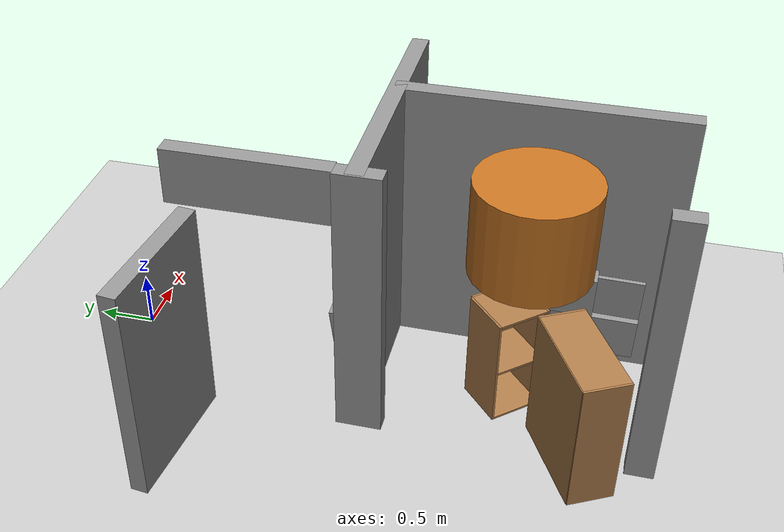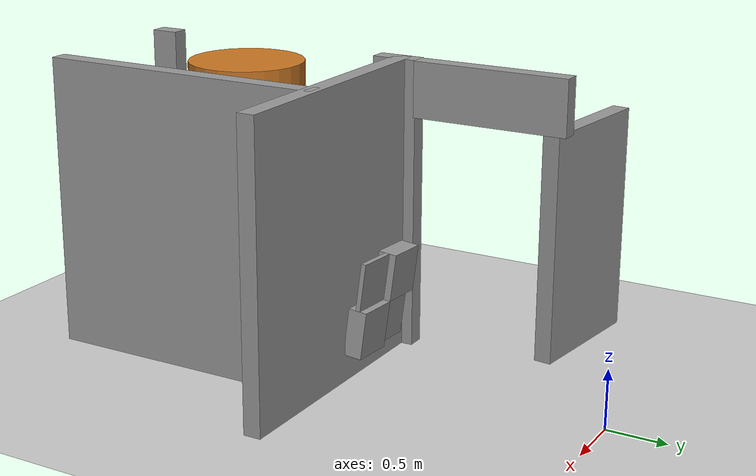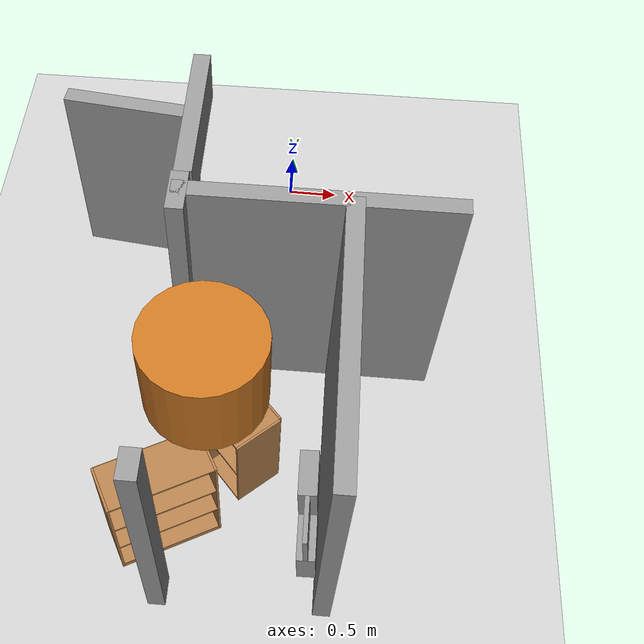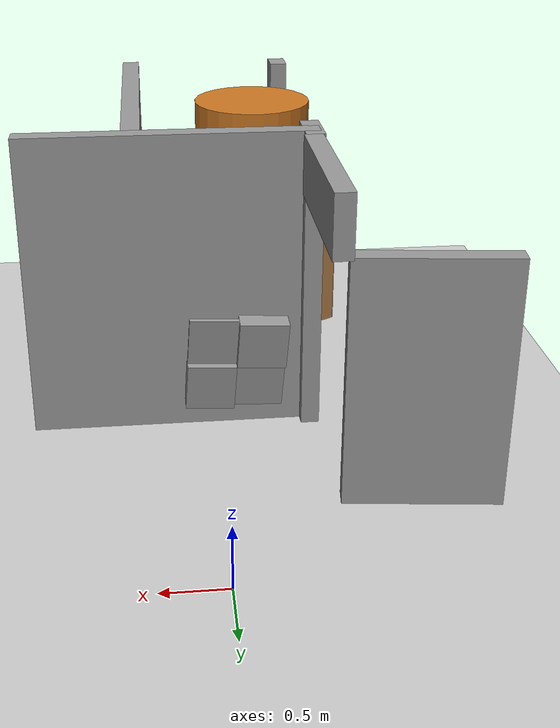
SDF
<sdf version="1.7">
 <world name="default">
  <model name="demo_clean">
   <static>1</static>
   <link name="Wall_19">
    <collision name="Wall_19_Collision">
     <geometry><box><size>2.34163 0.15 2.5</size></box></geometry>
     <pose>0 0 1.25 0 -0 0</pose>
     <surface>
      <friction>
       <ode><mu>1</mu><mu2>1</mu2><fdir1>0 0 0</fdir1><slip1>0</slip1><slip2>0</slip2></ode>
       <torsional>
        <coefficient>1</coefficient>
        <patch_radius>0</patch_radius>
        <surface_radius>0</surface_radius>
        <use_patch_radius>1</use_patch_radius>
        <ode><slip>0</slip></ode>
       </torsional>
      </friction>
      <bounce><restitution_coefficient>0</restitution_coefficient><threshold>1e+06</threshold></bounce>
      <contact>
       <collide_without_contact>0</collide_without_contact>
       <collide_without_contact_bitmask>1</collide_without_contact_bitmask>
       <collide_bitmask>1</collide_bitmask>
       <ode>
        <soft_cfm>0</soft_cfm>
        <soft_erp>0.2</soft_erp>
        <kp>1e+13</kp>
        <kd>1</kd>
        <max_vel>0.01</max_vel>
        <min_depth>0</min_depth>
       </ode>
       <bullet>
        <split_impulse>1</split_impulse>
        <split_impulse_penetration_threshold>-0.01</split_impulse_penetration_threshold>
        <soft_cfm>0</soft_cfm>
        <soft_erp>0.2</soft_erp>
        <kp>1e+13</kp>
        <kd>1</kd>
       </bullet>
      </contact>
     </surface>
    </collision>
    <visual name="Wall_19_Visual">
     <geometry><box><size>2.34163 0.15 2.5</size></box></geometry>
     <material>
      <script><name>Gazebo/Grey</name><uri>file://media/materials/scripts/gazebo.material</uri></script>
      <ambient>1 1 1 1</ambient>
      <shader type="pixel"><normal_map>default</normal_map></shader>
     </material>
     <pose>0 0 1.25 0 -0 0</pose>
    </visual>
    <inertial>
     <inertia><ixx>0</ixx><iyy>0</iyy><izz>0</izz><ixy>0</ixy><ixz>0</ixz><iyz>0</iyz></inertia>
     <mass>1</mass>
    </inertial>
    <pose>0.295923 -2.24288 0 0 -0 0</pose>
   </link>
   <link name="Wall_21">
    <collision name="Wall_21_Collision">
     <geometry><box><size>2.5 0.15 2.5</size></box></geometry>
     <pose>0 0 1.25 0 -0 0</pose>
     <surface>
      <friction>
       <ode><mu>1</mu><mu2>1</mu2><fdir1>0 0 0</fdir1><slip1>0</slip1><slip2>0</slip2></ode>
       <torsional>
        <coefficient>1</coefficient>
        <patch_radius>0</patch_radius>
        <surface_radius>0</surface_radius>
        <use_patch_radius>1</use_patch_radius>
        <ode><slip>0</slip></ode>
       </torsional>
      </friction>
      <bounce><restitution_coefficient>0</restitution_coefficient><threshold>1e+06</threshold></bounce>
      <contact>
       <collide_without_contact>0</collide_without_contact>
       <collide_without_contact_bitmask>1</collide_without_contact_bitmask>
       <collide_bitmask>1</collide_bitmask>
       <ode>
        <soft_cfm>0</soft_cfm>
        <soft_erp>0.2</soft_erp>
        <kp>1e+13</kp>
        <kd>1</kd>
        <max_vel>0.01</max_vel>
        <min_depth>0</min_depth>
       </ode>
       <bullet>
        <split_impulse>1</split_impulse>
        <split_impulse_penetration_threshold>-0.01</split_impulse_penetration_threshold>
        <soft_cfm>0</soft_cfm>
        <soft_erp>0.2</soft_erp>
        <kp>1e+13</kp>
        <kd>1</kd>
       </bullet>
      </contact>
     </surface>
    </collision>
    <visual name="Wall_21_Visual">
     <geometry><box><size>2.5 0.15 2.5</size></box></geometry>
     <material>
      <script><name>Gazebo/Grey</name><uri>file://media/materials/scripts/gazebo.material</uri></script>
      <ambient>1 1 1 1</ambient>
      <shader type="pixel"><normal_map>default</normal_map></shader>
     </material>
     <pose>0 0 1.25 0 -0 0</pose>
    </visual>
    <pose>0.573753 -3.46553 0 0 0 -1.5708</pose>
   </link>
   <link name="Wall_21_clone_0">
    <collision name="Wall_21_Collision">
     <geometry><box><size>0.394105 0.15 2.5</size></box></geometry>
     <pose>0 0 1.25 0 -0 0</pose>
     <surface>
      <friction>
       <ode><mu>1</mu><mu2>1</mu2><fdir1>0 0 0</fdir1><slip1>0</slip1><slip2>0</slip2></ode>
       <torsional>
        <coefficient>1</coefficient>
        <patch_radius>0</patch_radius>
        <surface_radius>0</surface_radius>
        <use_patch_radius>1</use_patch_radius>
        <ode><slip>0</slip></ode>
       </torsional>
      </friction>
      <bounce><restitution_coefficient>0</restitution_coefficient><threshold>1e+06</threshold></bounce>
      <contact>
       <collide_without_contact>0</collide_without_contact>
       <collide_without_contact_bitmask>1</collide_without_contact_bitmask>
       <collide_bitmask>1</collide_bitmask>
       <ode>
        <soft_cfm>0</soft_cfm>
        <soft_erp>0.2</soft_erp>
        <kp>1e+13</kp>
        <kd>1</kd>
        <max_vel>0.01</max_vel>
        <min_depth>0</min_depth>
       </ode>
       <bullet>
        <split_impulse>1</split_impulse>
        <split_impulse_penetration_threshold>-0.01</split_impulse_penetration_threshold>
        <soft_cfm>0</soft_cfm>
        <soft_erp>0.2</soft_erp>
        <kp>1e+13</kp>
        <kd>1</kd>
       </bullet>
      </contact>
     </surface>
    </collision>
    <visual name="Wall_21_Visual">
     <geometry><box><size>0.394105 0.15 2.5</size></box></geometry>
     <material>
      <script><name>Gazebo/Grey</name><uri>file://media/materials/scripts/gazebo.material</uri></script>
      <ambient>1 1 1 1</ambient>
      <shader type="pixel"><normal_map>default</normal_map></shader>
     </material>
     <pose>0 0 1.25 0 -0 0</pose>
    </visual>
    <inertial>
     <inertia><ixx>0</ixx><iyy>0</iyy><izz>0</izz><ixy>0</ixy><ixz>0</ixz><iyz>0</iyz></inertia>
     <mass>1</mass>
    </inertial>
    <pose>-0.820336 -2.26773 0 0 0 -1.5708</pose>
   </link>
   <link name="Wall_21_clone_0_clone_0_clone_clone">
    <gravity>0</gravity>
    <collision name="Wall_21_Collision">
     <geometry><box><size>1.1941 0.15 1.96033</size></box></geometry>
     <pose>0 0 1.25 0 -0 0</pose>
     <surface>
      <friction>
       <ode><mu>1</mu><mu2>1</mu2><fdir1>0 0 0</fdir1><slip1>0</slip1><slip2>0</slip2></ode>
       <torsional>
        <coefficient>1</coefficient>
        <patch_radius>0</patch_radius>
        <surface_radius>0</surface_radius>
        <use_patch_radius>1</use_patch_radius>
        <ode><slip>0</slip></ode>
       </torsional>
      </friction>
      <bounce><restitution_coefficient>0</restitution_coefficient><threshold>1e+06</threshold></bounce>
      <contact>
       <collide_without_contact>0</collide_without_contact>
       <collide_without_contact_bitmask>1</collide_without_contact_bitmask>
       <collide_bitmask>1</collide_bitmask>
       <ode>
        <soft_cfm>0</soft_cfm>
        <soft_erp>0.2</soft_erp>
        <kp>1e+13</kp>
        <kd>1</kd>
        <max_vel>0.01</max_vel>
        <min_depth>0</min_depth>
       </ode>
       <bullet>
        <split_impulse>1</split_impulse>
        <split_impulse_penetration_threshold>-0.01</split_impulse_penetration_threshold>
        <soft_cfm>0</soft_cfm>
        <soft_erp>0.2</soft_erp>
        <kp>1e+13</kp>
        <kd>1</kd>
       </bullet>
      </contact>
     </surface>
    </collision>
    <visual name="Wall_21_Visual">
     <geometry><box><size>1.1941 0.15 1.96033</size></box></geometry>
     <material>
      <script><name>Gazebo/Grey</name><uri>file://media/materials/scripts/gazebo.material</uri></script>
      <ambient>1 1 1 1</ambient>
      <shader type="pixel"><normal_map>__default__</normal_map></shader>
      <diffuse>0.7 0.7 0.7 1</diffuse>
      <specular>0.01 0.01 0.01 1</specular>
      <emissive>0 0 0 1</emissive>
     </material>
     <pose>0 0 1.25 0 -0 0</pose>
    </visual>
    <inertial>
     <inertia><ixx>0</ixx><iyy>0</iyy><izz>0</izz><ixy>0</ixy><ixz>0</ixz><iyz>0</iyz></inertia>
     <mass>1</mass>
    </inertial>
    <pose>-1.47342 -0.839052 -0.23202 0 -0 3.0297</pose>
   </link>
   <link name="Wall_21_clone_clone">
    <collision name="Wall_21_Collision">
     <geometry><box><size>0.240964 0.15 2.5</size></box></geometry>
     <pose>0 0 1.25 0 -0 0</pose>
     <surface>
      <friction>
       <ode><mu>1</mu><mu2>1</mu2><fdir1>0 0 0</fdir1><slip1>0</slip1><slip2>0</slip2></ode>
       <torsional>
        <coefficient>1</coefficient>
        <patch_radius>0</patch_radius>
        <surface_radius>0</surface_radius>
        <use_patch_radius>1</use_patch_radius>
        <ode><slip>0</slip></ode>
       </torsional>
      </friction>
      <bounce><restitution_coefficient>0</restitution_coefficient><threshold>1e+06</threshold></bounce>
      <contact>
       <collide_without_contact>0</collide_without_contact>
       <collide_without_contact_bitmask>1</collide_without_contact_bitmask>
       <collide_bitmask>1</collide_bitmask>
       <ode>
        <soft_cfm>0</soft_cfm>
        <soft_erp>0.2</soft_erp>
        <kp>1e+13</kp>
        <kd>1</kd>
        <max_vel>0.01</max_vel>
        <min_depth>0</min_depth>
       </ode>
       <bullet>
        <split_impulse>1</split_impulse>
        <split_impulse_penetration_threshold>-0.01</split_impulse_penetration_threshold>
        <soft_cfm>0</soft_cfm>
        <soft_erp>0.2</soft_erp>
        <kp>1e+13</kp>
        <kd>1</kd>
       </bullet>
      </contact>
     </surface>
    </collision>
    <visual name="Wall_21_Visual">
     <geometry><box><size>0.240964 0.15 2.5</size></box></geometry>
     <material>
      <script><name>Gazebo/Grey</name><uri>file://media/materials/scripts/gazebo.material</uri></script>
      <ambient>1 1 1 1</ambient>
      <shader type="pixel"><normal_map>default</normal_map></shader>
     </material>
     <pose>0 0 1.25 0 -0 0</pose>
    </visual>
    <inertial>
     <inertia><ixx>0</ixx><iyy>0</iyy><izz>0</izz><ixy>0</ixy><ixz>0</ixz><iyz>0</iyz></inertia>
     <mass>1</mass>
    </inertial>
    <pose>-0.824993 -4.62184 0 0 0 -1.5708</pose>
   </link>
   <link name="Wall_28_clone_clone_clone">
    <gravity>0</gravity>
    <collision name="Wall_28_Collision">
     <geometry><box><size>1.35894 0.15 0.476648</size></box></geometry>
     <pose>0 0 1.25 0 -0 0</pose>
     <surface>
      <friction>
       <ode><mu>1</mu><mu2>1</mu2><fdir1>0 0 0</fdir1><slip1>0</slip1><slip2>0</slip2></ode>
       <torsional>
        <coefficient>1</coefficient>
        <patch_radius>0</patch_radius>
        <surface_radius>0</surface_radius>
        <use_patch_radius>1</use_patch_radius>
        <ode><slip>0</slip></ode>
       </torsional>
      </friction>
      <bounce><restitution_coefficient>0</restitution_coefficient><threshold>1e+06</threshold></bounce>
      <contact>
       <collide_without_contact>0</collide_without_contact>
       <collide_without_contact_bitmask>1</collide_without_contact_bitmask>
       <collide_bitmask>1</collide_bitmask>
       <ode>
        <soft_cfm>0</soft_cfm>
        <soft_erp>0.2</soft_erp>
        <kp>1e+13</kp>
        <kd>1</kd>
        <max_vel>0.01</max_vel>
        <min_depth>0</min_depth>
       </ode>
       <bullet>
        <split_impulse>1</split_impulse>
        <split_impulse_penetration_threshold>-0.01</split_impulse_penetration_threshold>
        <soft_cfm>0</soft_cfm>
        <soft_erp>0.2</soft_erp>
        <kp>1e+13</kp>
        <kd>1</kd>
       </bullet>
      </contact>
     </surface>
    </collision>
    <visual name="Wall_28_Visual">
     <geometry><box><size>1.35894 0.15 0.476648</size></box></geometry>
     <material>
      <script><name>Gazebo/Grey</name><uri>file://media/materials/scripts/gazebo.material</uri></script>
      <ambient>1 1 1 1</ambient>
      <shader type="pixel"><normal_map>__default__</normal_map></shader>
     </material>
     <pose>0 0 1.25 0 -0 0</pose>
    </visual>
    <inertial>
     <inertia><ixx>0</ixx><iyy>0</iyy><izz>0</izz><ixy>0</ixy><ixz>0</ixz><iyz>0</iyz></inertia>
     <mass>1</mass>
    </inertial>
    <pose>-0.802228 -1.39589 1.01168 0 0 -1.57004</pose>
   </link>
  </model>
  <model name="static_cylinder">
   <pose>-0.476185 -3.54773 2 0 -0 0.36809</pose>
   <static>1</static>
   <allow_auto_disable>0</allow_auto_disable>
   <link name="link">
    <collision name="collision">
     <geometry><cylinder><radius>0.5</radius><length>0.8</length></cylinder></geometry>
     <max_contacts>20</max_contacts>
    </collision>
    <visual name="visual">
     <geometry><cylinder><radius>0.5</radius><length>0.8</length></cylinder></geometry>
     <material>
      <ambient>0.796078 0.466667 0.137255 1</ambient>
      <diffuse>0.796078 0.466667 0.137255 1</diffuse>
     </material>
    </visual>
   </link>
  </model>
  <model name="ground_plane">
   <static>1</static>
   <link name="link">
    <collision name="collision">
     <geometry><plane><normal>0 0 1</normal><size>100 100</size></plane></geometry>
     <surface>
      <contact><collide_bitmask>65535</collide_bitmask></contact>
      <friction><ode><mu>100</mu><mu2>50</mu2></ode></friction>
     </surface>
    </collision>
    <visual name="visual">
     <cast_shadows>0</cast_shadows>
     <geometry><plane><normal>0 0 1</normal><size>100 100</size></plane></geometry>
     <material>
      <script><uri>file://media/materials/scripts/gazebo.material</uri><name>Gazebo/Grey</name></script>
     </material>
    </visual>
   </link>
  </model>
  <model name="wall_slate_76">
   <static>1</static>
   <link name="link_0">
    <inertial><mass>1</mass></inertial>
    <gravity>0</gravity>
    <visual name="visual">
     <pose>0 0.2 0.2 0 -0 0</pose>
     <geometry><box><size>0.16 0.4 0.4</size></box></geometry>
     <material>
      <lighting>1</lighting>
      <script><uri>file://media/materials/scripts/gazebo.material</uri><name>Gazebo/Grey</name></script>
      <shader type="pixel"><normal_map>__default__</normal_map></shader>
      <ambient>0.3 0.3 0.3 1</ambient>
      <diffuse>0.7 0.7 0.7 1</diffuse>
      <specular>0.01 0.01 0.01 1</specular>
      <emissive>0 0 0 1</emissive>
     </material>
    </visual>
    <visual name="ModelPreview_0::link_0::visual_1">
     <pose>0 0.2 -0.2 0 -0 0</pose>
     <geometry><box><size>0.04 0.4 0.4</size></box></geometry>
     <material>
      <lighting>1</lighting>
      <script><uri>file://media/materials/scripts/gazebo.material</uri><name>Gazebo/Grey</name></script>
      <shader type="pixel"><normal_map>__default__</normal_map></shader>
      <ambient>0.3 0.3 0.3 1</ambient>
      <diffuse>0.7 0.7 0.7 1</diffuse>
      <specular>0.01 0.01 0.01 1</specular>
      <emissive>0 0 0 1</emissive>
     </material>
    </visual>
    <visual name="ModelPreview_0::link_0::visual_2">
     <pose>0 -0.2 0.2 0 -0 0</pose>
     <geometry><box><size>0.04 0.4 0.4</size></box></geometry>
     <material>
      <lighting>1</lighting>
      <script><uri>file://media/materials/scripts/gazebo.material</uri><name>Gazebo/Grey</name></script>
      <shader type="pixel"><normal_map>__default__</normal_map></shader>
      <ambient>0.3 0.3 0.3 1</ambient>
      <diffuse>0.7 0.7 0.7 1</diffuse>
      <specular>0.01 0.01 0.01 1</specular>
      <emissive>0 0 0 1</emissive>
     </material>
    </visual>
    <visual name="ModelPreview_0::link_0::visual_3">
     <pose>0 -0.2 -0.2 0 -0 0</pose>
     <geometry><box><size>0.16 0.4 0.4</size></box></geometry>
     <material>
      <lighting>1</lighting>
      <script><uri>file://media/materials/scripts/gazebo.material</uri><name>Gazebo/Grey</name></script>
      <shader type="pixel"><normal_map>__default__</normal_map></shader>
      <ambient>0.3 0.3 0.3 1</ambient>
      <diffuse>0.7 0.7 0.7 1</diffuse>
      <specular>0.01 0.01 0.01 1</specular>
      <emissive>0 0 0 1</emissive>
     </material>
    </visual>
    <collision name="collision_2">
     <pose>0 -0.2 0.2 0 -0 0</pose>
     <geometry><box><size>0.04 0.4 0.4</size></box></geometry>
     <surface>
      <friction>
       <ode><mu>1</mu><mu2>1</mu2><fdir1>0 0 0</fdir1><slip1>0</slip1><slip2>0</slip2></ode>
       <torsional>
        <coefficient>1</coefficient>
        <patch_radius>0</patch_radius>
        <surface_radius>0</surface_radius>
        <use_patch_radius>1</use_patch_radius>
        <ode><slip>0</slip></ode>
       </torsional>
      </friction>
      <bounce><restitution_coefficient>0</restitution_coefficient><threshold>1e+06</threshold></bounce>
      <contact>
       <collide_without_contact>0</collide_without_contact>
       <collide_without_contact_bitmask>1</collide_without_contact_bitmask>
       <collide_bitmask>1</collide_bitmask>
       <ode>
        <soft_cfm>0</soft_cfm>
        <soft_erp>0.2</soft_erp>
        <kp>1e+13</kp>
        <kd>1</kd>
        <max_vel>0.01</max_vel>
        <min_depth>0</min_depth>
       </ode>
       <bullet>
        <split_impulse>1</split_impulse>
        <split_impulse_penetration_threshold>-0.01</split_impulse_penetration_threshold>
        <soft_cfm>0</soft_cfm>
        <soft_erp>0.2</soft_erp>
        <kp>1e+13</kp>
        <kd>1</kd>
       </bullet>
      </contact>
     </surface>
    </collision>
    <collision name="collision_1">
     <pose>0 0.2 -0.2 0 -0 0</pose>
     <geometry><box><size>0.04 0.4 0.4</size></box></geometry>
     <surface>
      <friction>
       <ode><mu>1</mu><mu2>1</mu2><fdir1>0 0 0</fdir1><slip1>0</slip1><slip2>0</slip2></ode>
       <torsional>
        <coefficient>1</coefficient>
        <patch_radius>0</patch_radius>
        <surface_radius>0</surface_radius>
        <use_patch_radius>1</use_patch_radius>
        <ode><slip>0</slip></ode>
       </torsional>
      </friction>
      <bounce><restitution_coefficient>0</restitution_coefficient><threshold>1e+06</threshold></bounce>
      <contact>
       <collide_without_contact>0</collide_without_contact>
       <collide_without_contact_bitmask>1</collide_without_contact_bitmask>
       <collide_bitmask>1</collide_bitmask>
       <ode>
        <soft_cfm>0</soft_cfm>
        <soft_erp>0.2</soft_erp>
        <kp>1e+13</kp>
        <kd>1</kd>
        <max_vel>0.01</max_vel>
        <min_depth>0</min_depth>
       </ode>
       <bullet>
        <split_impulse>1</split_impulse>
        <split_impulse_penetration_threshold>-0.01</split_impulse_penetration_threshold>
        <soft_cfm>0</soft_cfm>
        <soft_erp>0.2</soft_erp>
        <kp>1e+13</kp>
        <kd>1</kd>
       </bullet>
      </contact>
     </surface>
    </collision>
    <collision name="collision_4">
     <pose>0 0.2 0.2 0 -0 0</pose>
     <geometry><box><size>0.16 0.4 0.4</size></box></geometry>
     <surface>
      <friction>
       <ode><mu>1</mu><mu2>1</mu2><fdir1>0 0 0</fdir1><slip1>0</slip1><slip2>0</slip2></ode>
       <torsional>
        <coefficient>1</coefficient>
        <patch_radius>0</patch_radius>
        <surface_radius>0</surface_radius>
        <use_patch_radius>1</use_patch_radius>
        <ode><slip>0</slip></ode>
       </torsional>
      </friction>
      <bounce><restitution_coefficient>0</restitution_coefficient><threshold>1e+06</threshold></bounce>
      <contact>
       <collide_without_contact>0</collide_without_contact>
       <collide_without_contact_bitmask>1</collide_without_contact_bitmask>
       <collide_bitmask>1</collide_bitmask>
       <ode>
        <soft_cfm>0</soft_cfm>
        <soft_erp>0.2</soft_erp>
        <kp>1e+13</kp>
        <kd>1</kd>
        <max_vel>0.01</max_vel>
        <min_depth>0</min_depth>
       </ode>
       <bullet>
        <split_impulse>1</split_impulse>
        <split_impulse_penetration_threshold>-0.01</split_impulse_penetration_threshold>
        <soft_cfm>0</soft_cfm>
        <soft_erp>0.2</soft_erp>
        <kp>1e+13</kp>
        <kd>1</kd>
       </bullet>
      </contact>
     </surface>
    </collision>
    <collision name="collision_3">
     <pose>0 -0.2 -0.2 0 -0 0</pose>
     <geometry><box><size>0.16 0.4 0.4</size></box></geometry>
     <surface>
      <friction>
       <ode><mu>1</mu><mu2>1</mu2><fdir1>0 0 0</fdir1><slip1>0</slip1><slip2>0</slip2></ode>
       <torsional>
        <coefficient>1</coefficient>
        <patch_radius>0</patch_radius>
        <surface_radius>0</surface_radius>
        <use_patch_radius>1</use_patch_radius>
        <ode><slip>0</slip></ode>
       </torsional>
      </friction>
      <bounce><restitution_coefficient>0</restitution_coefficient><threshold>1e+06</threshold></bounce>
      <contact>
       <collide_without_contact>0</collide_without_contact>
       <collide_without_contact_bitmask>1</collide_without_contact_bitmask>
       <collide_bitmask>1</collide_bitmask>
       <ode>
        <soft_cfm>0</soft_cfm>
        <soft_erp>0.2</soft_erp>
        <kp>1e+13</kp>
        <kd>1</kd>
        <max_vel>0.01</max_vel>
        <min_depth>0</min_depth>
       </ode>
       <bullet>
        <split_impulse>1</split_impulse>
        <split_impulse_penetration_threshold>-0.01</split_impulse_penetration_threshold>
        <soft_cfm>0</soft_cfm>
        <soft_erp>0.2</soft_erp>
        <kp>1e+13</kp>
        <kd>1</kd>
       </bullet>
      </contact>
     </surface>
    </collision>
   </link>
   <pose>-0.204077 -2.06788 0.6 -0.06 0.1 1.5757</pose>
  </model>
  <model name="wall_slate_81">
   <static>1</static>
   <link name="link_0">
    <inertial><mass>1</mass></inertial>
    <gravity>0</gravity>
    <visual name="visual">
     <pose>0 0.2 0.2 0 -0 0</pose>
     <geometry><box><size>0.16 0.4 0.4</size></box></geometry>
     <material>
      <lighting>1</lighting>
      <script><uri>file://media/materials/scripts/gazebo.material</uri><name>Gazebo/Grey</name></script>
      <shader type="pixel"><normal_map>__default__</normal_map></shader>
      <ambient>0.3 0.3 0.3 1</ambient>
      <diffuse>0.7 0.7 0.7 1</diffuse>
      <specular>0.01 0.01 0.01 1</specular>
      <emissive>0 0 0 1</emissive>
     </material>
    </visual>
    <visual name="ModelPreview_0::link_0::visual_1">
     <pose>0 0.2 -0.2 0 -0 0</pose>
     <geometry><box><size>0.04 0.4 0.4</size></box></geometry>
     <material>
      <lighting>1</lighting>
      <script><uri>file://media/materials/scripts/gazebo.material</uri><name>Gazebo/Grey</name></script>
      <shader type="pixel"><normal_map>__default__</normal_map></shader>
      <ambient>0.3 0.3 0.3 1</ambient>
      <diffuse>0.7 0.7 0.7 1</diffuse>
      <specular>0.01 0.01 0.01 1</specular>
      <emissive>0 0 0 1</emissive>
     </material>
    </visual>
    <visual name="ModelPreview_0::link_0::visual_2">
     <pose>0 -0.2 0.2 0 -0 0</pose>
     <geometry><box><size>0.04 0.4 0.4</size></box></geometry>
     <material>
      <lighting>1</lighting>
      <script><uri>file://media/materials/scripts/gazebo.material</uri><name>Gazebo/Grey</name></script>
      <shader type="pixel"><normal_map>__default__</normal_map></shader>
      <ambient>0.3 0.3 0.3 1</ambient>
      <diffuse>0.7 0.7 0.7 1</diffuse>
      <specular>0.01 0.01 0.01 1</specular>
      <emissive>0 0 0 1</emissive>
     </material>
    </visual>
    <visual name="ModelPreview_0::link_0::visual_3">
     <pose>0 -0.2 -0.2 0 -0 0</pose>
     <geometry><box><size>0.16 0.4 0.4</size></box></geometry>
     <material>
      <lighting>1</lighting>
      <script><uri>file://media/materials/scripts/gazebo.material</uri><name>Gazebo/Grey</name></script>
      <shader type="pixel"><normal_map>__default__</normal_map></shader>
      <ambient>0.3 0.3 0.3 1</ambient>
      <diffuse>0.7 0.7 0.7 1</diffuse>
      <specular>0.01 0.01 0.01 1</specular>
      <emissive>0 0 0 1</emissive>
     </material>
    </visual>
    <collision name="collision_2">
     <pose>0 -0.2 0.2 0 -0 0</pose>
     <geometry><box><size>0.04 0.4 0.4</size></box></geometry>
     <surface>
      <friction>
       <ode><mu>1</mu><mu2>1</mu2><fdir1>0 0 0</fdir1><slip1>0</slip1><slip2>0</slip2></ode>
       <torsional>
        <coefficient>1</coefficient>
        <patch_radius>0</patch_radius>
        <surface_radius>0</surface_radius>
        <use_patch_radius>1</use_patch_radius>
        <ode><slip>0</slip></ode>
       </torsional>
      </friction>
      <bounce><restitution_coefficient>0</restitution_coefficient><threshold>1e+06</threshold></bounce>
      <contact>
       <collide_without_contact>0</collide_without_contact>
       <collide_without_contact_bitmask>1</collide_without_contact_bitmask>
       <collide_bitmask>1</collide_bitmask>
       <ode>
        <soft_cfm>0</soft_cfm>
        <soft_erp>0.2</soft_erp>
        <kp>1e+13</kp>
        <kd>1</kd>
        <max_vel>0.01</max_vel>
        <min_depth>0</min_depth>
       </ode>
       <bullet>
        <split_impulse>1</split_impulse>
        <split_impulse_penetration_threshold>-0.01</split_impulse_penetration_threshold>
        <soft_cfm>0</soft_cfm>
        <soft_erp>0.2</soft_erp>
        <kp>1e+13</kp>
        <kd>1</kd>
       </bullet>
      </contact>
     </surface>
    </collision>
    <collision name="collision_1">
     <pose>0 0.2 -0.2 0 -0 0</pose>
     <geometry><box><size>0.04 0.4 0.4</size></box></geometry>
     <surface>
      <friction>
       <ode><mu>1</mu><mu2>1</mu2><fdir1>0 0 0</fdir1><slip1>0</slip1><slip2>0</slip2></ode>
       <torsional>
        <coefficient>1</coefficient>
        <patch_radius>0</patch_radius>
        <surface_radius>0</surface_radius>
        <use_patch_radius>1</use_patch_radius>
        <ode><slip>0</slip></ode>
       </torsional>
      </friction>
      <bounce><restitution_coefficient>0</restitution_coefficient><threshold>1e+06</threshold></bounce>
      <contact>
       <collide_without_contact>0</collide_without_contact>
       <collide_without_contact_bitmask>1</collide_without_contact_bitmask>
       <collide_bitmask>1</collide_bitmask>
       <ode>
        <soft_cfm>0</soft_cfm>
        <soft_erp>0.2</soft_erp>
        <kp>1e+13</kp>
        <kd>1</kd>
        <max_vel>0.01</max_vel>
        <min_depth>0</min_depth>
       </ode>
       <bullet>
        <split_impulse>1</split_impulse>
        <split_impulse_penetration_threshold>-0.01</split_impulse_penetration_threshold>
        <soft_cfm>0</soft_cfm>
        <soft_erp>0.2</soft_erp>
        <kp>1e+13</kp>
        <kd>1</kd>
       </bullet>
      </contact>
     </surface>
    </collision>
    <collision name="collision_4">
     <pose>0 0.2 0.2 0 -0 0</pose>
     <geometry><box><size>0.16 0.4 0.4</size></box></geometry>
     <surface>
      <friction>
       <ode><mu>1</mu><mu2>1</mu2><fdir1>0 0 0</fdir1><slip1>0</slip1><slip2>0</slip2></ode>
       <torsional>
        <coefficient>1</coefficient>
        <patch_radius>0</patch_radius>
        <surface_radius>0</surface_radius>
        <use_patch_radius>1</use_patch_radius>
        <ode><slip>0</slip></ode>
       </torsional>
      </friction>
      <bounce><restitution_coefficient>0</restitution_coefficient><threshold>1e+06</threshold></bounce>
      <contact>
       <collide_without_contact>0</collide_without_contact>
       <collide_without_contact_bitmask>1</collide_without_contact_bitmask>
       <collide_bitmask>1</collide_bitmask>
       <ode>
        <soft_cfm>0</soft_cfm>
        <soft_erp>0.2</soft_erp>
        <kp>1e+13</kp>
        <kd>1</kd>
        <max_vel>0.01</max_vel>
        <min_depth>0</min_depth>
       </ode>
       <bullet>
        <split_impulse>1</split_impulse>
        <split_impulse_penetration_threshold>-0.01</split_impulse_penetration_threshold>
        <soft_cfm>0</soft_cfm>
        <soft_erp>0.2</soft_erp>
        <kp>1e+13</kp>
        <kd>1</kd>
       </bullet>
      </contact>
     </surface>
    </collision>
    <collision name="collision_3">
     <pose>0 -0.2 -0.2 0 -0 0</pose>
     <geometry><box><size>0.16 0.4 0.4</size></box></geometry>
     <surface>
      <friction>
       <ode><mu>1</mu><mu2>1</mu2><fdir1>0 0 0</fdir1><slip1>0</slip1><slip2>0</slip2></ode>
       <torsional>
        <coefficient>1</coefficient>
        <patch_radius>0</patch_radius>
        <surface_radius>0</surface_radius>
        <use_patch_radius>1</use_patch_radius>
        <ode><slip>0</slip></ode>
       </torsional>
      </friction>
      <bounce><restitution_coefficient>0</restitution_coefficient><threshold>1e+06</threshold></bounce>
      <contact>
       <collide_without_contact>0</collide_without_contact>
       <collide_without_contact_bitmask>1</collide_without_contact_bitmask>
       <collide_bitmask>1</collide_bitmask>
       <ode>
        <soft_cfm>0</soft_cfm>
        <soft_erp>0.2</soft_erp>
        <kp>1e+13</kp>
        <kd>1</kd>
        <max_vel>0.01</max_vel>
        <min_depth>0</min_depth>
       </ode>
       <bullet>
        <split_impulse>1</split_impulse>
        <split_impulse_penetration_threshold>-0.01</split_impulse_penetration_threshold>
        <soft_cfm>0</soft_cfm>
        <soft_erp>0.2</soft_erp>
        <kp>1e+13</kp>
        <kd>1</kd>
       </bullet>
      </contact>
     </surface>
    </collision>
   </link>
   <pose>0.398755 -4.06553 0.6 0.02 -0.06 0.0049</pose>
  </model>
  <model name="bookshelf">
   <static>1</static>
   <link name="link">
    <inertial><mass>1</mass></inertial>
    <collision name="back">
     <pose>0 0.005 0.6 0 -0 0</pose>
     <geometry><box><size>0.9 0.01 1.2</size></box></geometry>
    </collision>
    <visual name="visual1">
     <pose>0 0.005 0.6 0 -0 0</pose>
     <geometry><box><size>0.9 0.01 1.2</size></box></geometry>
     <material>
      <script><uri>file://media/materials/scripts/gazebo.material</uri><name>Gazebo/Wood</name></script>
     </material>
    </visual>
    <collision name="left_side">
     <pose>0.45 -0.195 0.6 0 -0 0</pose>
     <geometry><box><size>0.02 0.4 1.2</size></box></geometry>
    </collision>
    <visual name="visual2">
     <pose>0.45 -0.195 0.6 0 -0 0</pose>
     <geometry><box><size>0.02 0.4 1.2</size></box></geometry>
     <material>
      <script><uri>file://media/materials/scripts/gazebo.material</uri><name>Gazebo/Wood</name></script>
     </material>
    </visual>
    <collision name="right_side">
     <pose>-0.45 -0.195 0.6 0 -0 0</pose>
     <geometry><box><size>0.02 0.4 1.2</size></box></geometry>
    </collision>
    <visual name="visual3">
     <pose>-0.45 -0.195 0.6 0 -0 0</pose>
     <geometry><box><size>0.02 0.4 1.2</size></box></geometry>
     <material>
      <script><uri>file://media/materials/scripts/gazebo.material</uri><name>Gazebo/Wood</name></script>
     </material>
    </visual>
    <collision name="bottom">
     <pose>0 -0.195 0.03 0 -0 0</pose>
     <geometry><box><size>0.88 0.4 0.06</size></box></geometry>
    </collision>
    <visual name="visual4">
     <pose>0 -0.195 0.03 0 -0 0</pose>
     <geometry><box><size>0.88 0.4 0.06</size></box></geometry>
     <material>
      <script><uri>file://media/materials/scripts/gazebo.material</uri><name>Gazebo/Wood</name></script>
     </material>
    </visual>
    <collision name="top">
     <pose>0 -0.195 1.19 0 -0 0</pose>
     <geometry><box><size>0.88 0.4 0.02</size></box></geometry>
    </collision>
    <visual name="visual5">
     <pose>0 -0.195 1.19 0 -0 0</pose>
     <geometry><box><size>0.88 0.4 0.02</size></box></geometry>
     <material>
      <script><uri>file://media/materials/scripts/gazebo.material</uri><name>Gazebo/Wood</name></script>
     </material>
    </visual>
    <collision name="low_shelf">
     <pose>0 -0.195 0.43 0 -0 0</pose>
     <geometry><box><size>0.88 0.4 0.02</size></box></geometry>
    </collision>
    <visual name="visual6">
     <pose>0 -0.195 0.43 0 -0 0</pose>
     <geometry><box><size>0.88 0.4 0.02</size></box></geometry>
     <material>
      <script><uri>file://media/materials/scripts/gazebo.material</uri><name>Gazebo/Wood</name></script>
     </material>
    </visual>
    <collision name="high_shelf">
     <pose>0 -0.195 0.8 0 -0 0</pose>
     <geometry><box><size>0.88 0.4 0.02</size></box></geometry>
    </collision>
    <visual name="visual7">
     <pose>0 -0.195 0.8 0 -0 0</pose>
     <geometry><box><size>0.88 0.4 0.02</size></box></geometry>
     <material>
      <script><uri>file://media/materials/scripts/gazebo.material</uri><name>Gazebo/Wood</name></script>
     </material>
    </visual>
   </link>
   <pose>-0.942069 -3.87587 0 0 -0 0.491589</pose>
  </model>
  <model name="cabinet_0">
   <static>1</static>
   <link name="cabinet_bottom_plate">
    <inertial>
     <pose>0 0 -1 0 -0 0</pose>
     <inertia><ixx>2.05</ixx><ixy>0</ixy><ixz>0</ixz><iyy>2.05</iyy><iyz>0</iyz><izz>2.05</izz></inertia>
     <mass>25</mass>
    </inertial>
    <collision name="cabinet_bottom_plate_geom">
     <pose>0 0 0.01 0 -0 0</pose>
     <geometry><box><size>0.45 0.45 0.02</size></box></geometry>
    </collision>
    <visual name="cabinet_bottom_plate_geom_visual">
     <pose>0 0 0.01 0 -0 0</pose>
     <geometry><box><size>0.45 0.45 0.02</size></box></geometry>
     <material>
      <script><uri>file://media/materials/scripts/gazebo.material</uri><name>Gazebo/Wood</name></script>
     </material>
    </visual>
    <collision name="cabinet_bottom_plate_geom_cabinet_back_plate">
     <pose>0.235 0 0.51 0 -0 0</pose>
     <geometry><box><size>0.02 0.45 1.02</size></box></geometry>
    </collision>
    <visual name="cabinet_bottom_plate_geom_cabinet_back_plate_visual">
     <pose>0.235 0 0.51 0 -0 0</pose>
     <geometry><box><size>0.02 0.45 1.02</size></box></geometry>
     <material>
      <script><uri>file://media/materials/scripts/gazebo.material</uri><name>Gazebo/Wood</name></script>
     </material>
    </visual>
    <collision name="cabinet_bottom_plate_geom_cabinet_left_plate">
     <pose>0 0.235 0.51 0 -0 0</pose>
     <geometry><box><size>0.45 0.02 1.02</size></box></geometry>
    </collision>
    <visual name="cabinet_bottom_plate_geom_cabinet_left_plate_visual">
     <pose>0 0.235 0.51 0 -0 0</pose>
     <geometry><box><size>0.45 0.02 1.02</size></box></geometry>
     <material>
      <script><uri>file://media/materials/scripts/gazebo.material</uri><name>Gazebo/Wood</name></script>
     </material>
    </visual>
    <collision name="cabinet_bottom_plate_geom_cabinet_middle_plate">
     <pose>0 0 0.51 0 -0 0</pose>
     <geometry><box><size>0.45 0.45 0.02</size></box></geometry>
    </collision>
    <visual name="cabinet_bottom_plate_geom_cabinet_middle_plate_visual">
     <pose>0 0 0.51 0 -0 0</pose>
     <geometry><box><size>0.45 0.45 0.02</size></box></geometry>
     <material>
      <script><uri>file://media/materials/scripts/gazebo.material</uri><name>Gazebo/Wood</name></script>
     </material>
    </visual>
    <collision name="cabinet_bottom_plate_geom_cabinet_right_plate">
     <pose>0 -0.235 0.51 0 -0 0</pose>
     <geometry><box><size>0.45 0.02 1.02</size></box></geometry>
    </collision>
    <visual name="cabinet_bottom_plate_geom_cabinet_right_plate_visual">
     <pose>0 -0.235 0.51 0 -0 0</pose>
     <geometry><box><size>0.45 0.02 1.02</size></box></geometry>
     <material>
      <script><uri>file://media/materials/scripts/gazebo.material</uri><name>Gazebo/Wood</name></script>
     </material>
    </visual>
    <collision name="cabinet_bottom_plate_geom_cabinet_top_plate">
     <pose>0 0 1.01 0 -0 0</pose>
     <geometry><box><size>0.45 0.45 0.02</size></box></geometry>
    </collision>
    <visual name="cabinet_bottom_plate_geom_cabinet_top_plate_visual">
     <pose>0 0 1.01 0 -0 0</pose>
     <geometry><box><size>0.45 0.45 0.02</size></box></geometry>
     <material>
      <script><uri>file://media/materials/scripts/gazebo.material</uri><name>Gazebo/Wood</name></script>
     </material>
    </visual>
   </link>
   <pose>-0.215574 -3.398 0 0 -0 0.726211</pose>
  </model>
 </world>
</sdf>
